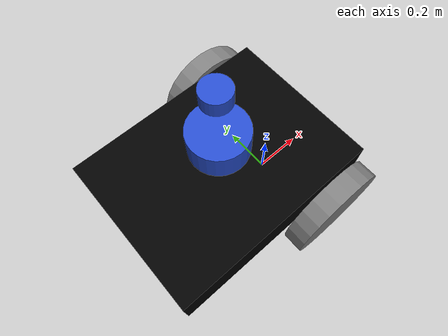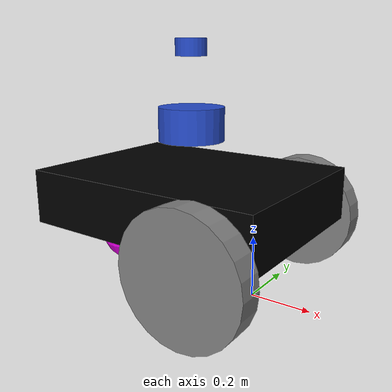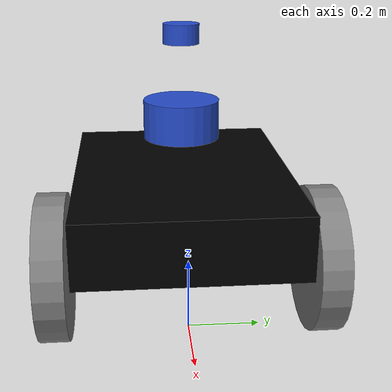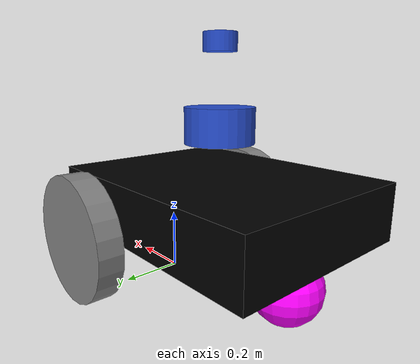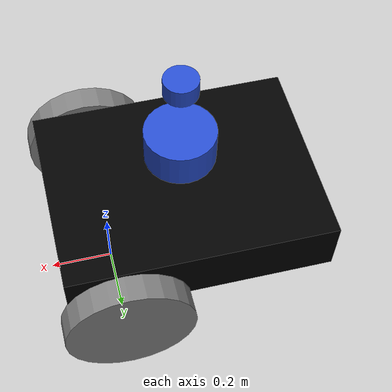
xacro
<?xml version="1.0"?>
<robot name="mobile_robot" xmlns:xacro="http://ros.org/wiki/xacro">
  <!-- Define robot constants -->
  <xacro:property name="base_width" value="0.62"/>
  <xacro:property name="base_length" value="0.82"/>
  <xacro:property name="base_height" value="0.18"/>

  <xacro:property name="wheel_radius" value="0.20"/>
  <xacro:property name="wheel_width" value="0.08"/>
  <xacro:property name="wheel_ygap" value="0.05"/>
  <xacro:property name="wheel_zoff" value="0.1"/>
  <xacro:property name="wheel_xoff" value="0.24"/>

  <xacro:property name="caster_xoff" value="0.28"/>

  <!-- Define some commonly used intertial properties  -->
  <xacro:macro name="box_inertia" params="m w h d">
    <inertial>
      <origin xyz="0 0 0" rpy="${pi/2} 0 ${pi/2}"/>
      <mass value="${m}"/>
      <inertia ixx="${(m/12) * (h*h + d*d)}" ixy="0.0" ixz="0.0" iyy="${(m/12) * (w*w + d*d)}" iyz="0.0" izz="${(m/12) * (w*w + h*h)}"/>
    </inertial>
  </xacro:macro>

  <xacro:macro name="cylinder_inertia" params="m r h">
    <inertial>
      <origin xyz="0 0 0" rpy="${pi/2} 0 0" />
      <mass value="${m}"/>
      <inertia ixx="${(m/12) * (3*r*r + h*h)}" ixy = "0" ixz = "0" iyy="${(m/12) * (3*r*r + h*h)}" iyz = "0" izz="${(m/2) * (r*r)}"/>
    </inertial>
  </xacro:macro>

  <xacro:macro name="sphere_inertia" params="m r">
    <inertial>
      <mass value="${m}"/>
      <inertia ixx="${(2/5) * m * (r*r)}" ixy="0.0" ixz="0.0" iyy="${(2/5) * m * (r*r)}" iyz="0.0" izz="${(2/5) * m * (r*r)}"/>
    </inertial>
  </xacro:macro>

   <!-- Robot Footprint -->
  <link name="base_footprint">
  	<xacro:box_inertia m="0" w="0" d="0" h="0"/>
  </link>

  <joint name="base_joint" type="fixed">
    <parent link="base_footprint"/>
    <child link="base_link"/>
    <origin xyz="${-1 * wheel_xoff} 0.0 ${(wheel_radius+wheel_zoff)}" rpy="0 0 0"/>
  </joint>

  <!-- Robot Base -->
  <link name="base_link">
    <visual>
      <geometry>
        <box size="${base_length} ${base_width} ${base_height}"/>
      </geometry>
      <material name="Cyan">
        <color rgba="0.0 0.0 0.0 1.0"/>
      </material>
    </visual>

    <collision>
      <geometry>
        <box size="${base_length} ${base_width} ${base_height}"/>
      </geometry>
    </collision>

    <xacro:box_inertia m="15" w="${base_width}" d="${base_length}" h="${base_height}"/>
  </link>

  <link name="wheel_left_link">
    <visual>
      <origin xyz="0 0 0" rpy="${pi/2} 0 0"/>
      <geometry>
          <cylinder radius="${wheel_radius}" length="${wheel_width}"/>
      </geometry>
      <material name="Gray">
        <color rgba="0.5 0.5 0.5 1.0"/>
      </material>
    </visual>

    <collision>
      <origin xyz="0 0 0" rpy="${pi/2} 0 0"/>
      <geometry>
        <cylinder radius="${wheel_radius}" length="${wheel_width}"/>
      </geometry>
    </collision>

    <xacro:cylinder_inertia m="0.5" r="${wheel_radius}" h="${wheel_width}"/>
  </link>

  <joint name="wheel_left_joint" type="continuous">
    <parent link="base_link"/>
    <child link="wheel_left_link"/>
    <origin xyz="${wheel_xoff} ${1*(base_width/2+wheel_ygap)} ${-wheel_zoff}" rpy="0 0 0"/>
    <axis xyz="0 1 0"/>
  </joint>

  <link name="wheel_right_link">
    <visual>
      <origin xyz="0 0 0" rpy="${pi/2} 0 0"/>
      <geometry>
          <cylinder radius="${wheel_radius}" length="${wheel_width}"/>
      </geometry>
      <material name="Gray">
        <color rgba="0.5 0.5 0.5 1.0"/>
      </material>
    </visual>

    <collision>
      <origin xyz="0 0 0" rpy="${pi/2} 0 0"/>
      <geometry>
        <cylinder radius="${wheel_radius}" length="${wheel_width}"/>
      </geometry>
    </collision>

    <xacro:cylinder_inertia m="0.5" r="${wheel_radius}" h="${wheel_width}"/>
  </link>

  <joint name="wheel_right_joint" type="continuous">
    <parent link="base_link"/>
    <child link="wheel_right_link"/>
    <origin xyz="${wheel_xoff} ${-1 * (base_width/2+wheel_ygap)} ${-wheel_zoff}" rpy="0 0 0"/>
    <axis xyz="0 1 0"/>
  </joint>

  <link name="caster_link">
    <visual>
      <geometry>
        <sphere radius="${(wheel_radius+wheel_zoff-(base_height/2))/2}"/>
      </geometry>
      <material name="Cyan_2">
        <color rgba="1.0 0.0 1.0 1.0"/>
      </material>
    </visual>

    <collision>
      <origin xyz="0 0 0" rpy="0 0 0"/>
      <geometry>
        <sphere radius="${(wheel_radius+wheel_zoff-(base_height/2))/2}"/>
      </geometry>
    </collision>

    <xacro:sphere_inertia m="0.5" r="${(wheel_radius+wheel_zoff-(base_height/2))/2}"/>
  </link>

  <joint name="caster_joint" type="fixed">
    <parent link="base_link"/>
    <child link="caster_link"/>
    <origin xyz="${-caster_xoff} 0.0 ${-(base_height)-0.005}" rpy="0 0 0"/>
  </joint>

  <link name="imu_link">
    <visual>
      <geometry>
        <box size="0.1 0.1 0.1"/>
      </geometry>
    </visual>

    <collision>
      <geometry>
        <box size="0.1 0.1 0.1"/>
      </geometry>
    </collision>

    <xacro:box_inertia m="0.1" w="0.1" d="0.1" h="0.1"/>
  </link>

  <joint name="imu_joint" type="fixed">
    <parent link="base_link"/>
    <child link="imu_link"/>
    <origin xyz="0 0 0.01"/>
  </joint>

 <link name="os_sensor">
    <inertial>
      <origin xyz="0 0 0" rpy="0 0 0"/>
      <mass value="0.125"/>
      <inertia ixx="0.001"  ixy="0"  ixz="0" iyy="0.001" iyz="0" izz="0.001" />
    </inertial>

    <collision>
      <origin xyz="0 0 0" rpy="0 0 0"/>
      <geometry>
         <cylinder radius="0.0508" length="0.055"/>
      </geometry>
    </collision>

    <visual>
      <origin xyz="0 0 0" rpy="0 0 0"/>
      <geometry>
         <cylinder radius="0.0508" length="0.055"/>
      </geometry>
    </visual>
  </link>

  <joint name="os_joint" type="fixed">
    <parent link="base_link"/>
    <child link="os_sensor"/>
    <origin xyz="0 0 0.48" rpy="0 0 0"/>
  </joint>

 <link name="lidar_link">
    <inertial>
      <origin xyz="0 0 0" rpy="0 0 0"/>
      <mass value="0.125"/>
      <inertia ixx="0.001"  ixy="0"  ixz="0" iyy="0.001" iyz="0" izz="0.001" />
    </inertial>

    <collision>
      <origin xyz="0 0 0" rpy="0 0 0"/>
      <geometry>
         <cylinder radius="0.108" length="0.11"/>
      </geometry>
    </collision>

    <visual>
      <origin xyz="0 0 0" rpy="0 0 0"/>
      <geometry>
         <cylinder radius="0.108" length="0.11"/>
      </geometry>
    </visual>
  </link>

  <joint name="lidar_joint" type="fixed">
    <parent link="base_link"/>
    <child link="lidar_link"/>
    <origin xyz="0 0 0.24" rpy="0 0 0"/>
  </joint>

  <link name="camera_link">
    <visual>
      <origin xyz="0 0 0" rpy="0 0 0"/>
      <geometry>
        <box size="0.015 0.130 0.022"/>
      </geometry>
    </visual>

    <collision>
      <origin xyz="0 0 0" rpy="0 0 0"/>
      <geometry>
        <box size="0.015 0.130 0.022"/>
      </geometry>
    </collision>

    <inertial>
      <origin xyz="0 0 0" rpy="0 0 0"/>
      <mass value="0.035"/>
      <inertia ixx="0.001"  ixy="0"  ixz="0" iyy="0.001" iyz="0" izz="0.001" />
    </inertial>
  </link>

  <joint name="camera_joint" type="fixed">
    <parent link="base_link"/>
    <child link="camera_link"/>
    <origin xyz="0.215 0 0.05" rpy="0 0 0"/>
  </joint>

  <link name="camera_depth_frame"/>

  <joint name="camera_depth_joint" type="fixed">
    <origin xyz="0 0 0" rpy="${-pi/2} 0 ${-pi/2}"/>
    <parent link="camera_link"/>
    <child link="camera_depth_frame"/>
  </joint>

  <!-- Include gazebo macro -->

  <xacro:include filename="$(find rdsim_description)/urdf/jackal.gazebo.xacro" />
</robot>
